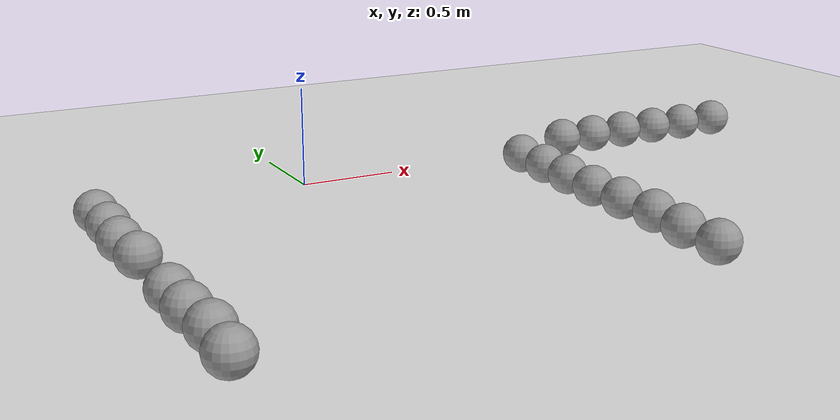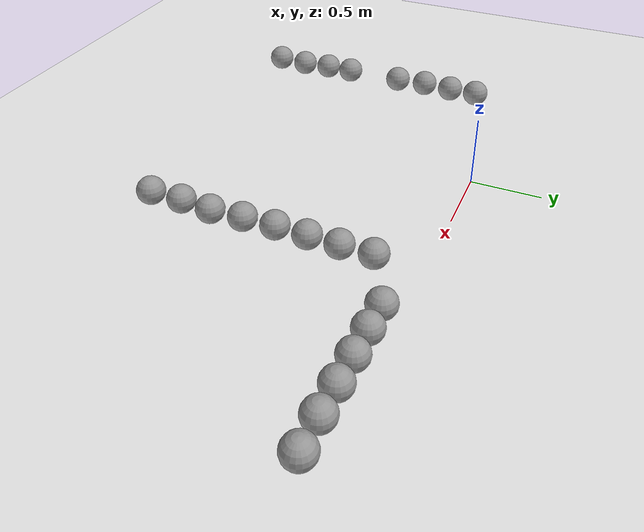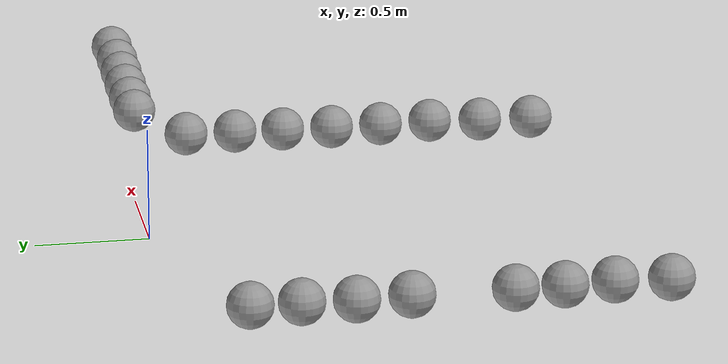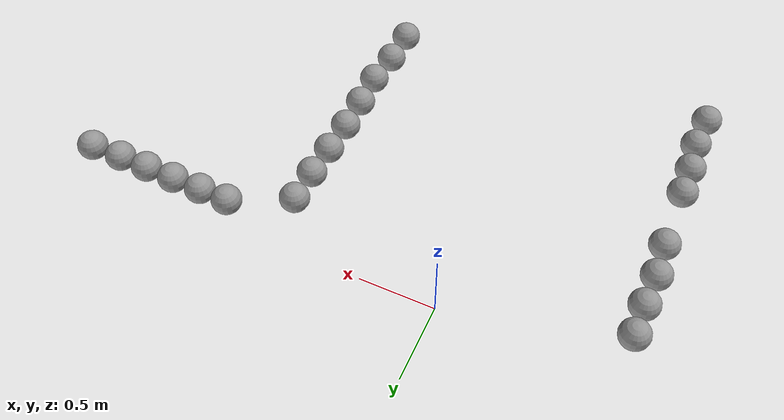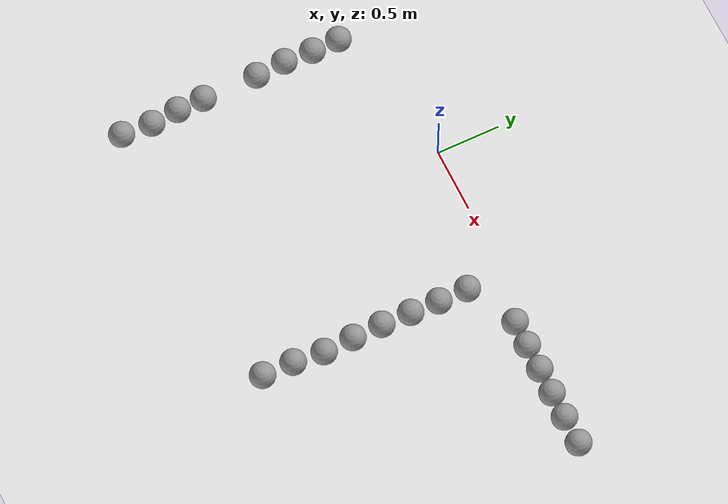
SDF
<sdf version="1.7">
 <world name="default">
  <model name="ground_plane">
   <static>1</static>
   <link name="link">
    <collision name="collision">
     <geometry><plane><normal>0 0 1</normal><size>100 100</size></plane></geometry>
     <surface>
      <contact><collide_bitmask>65535</collide_bitmask></contact>
      <friction><ode><mu>100</mu><mu2>50</mu2></ode></friction>
     </surface>
    </collision>
    <visual name="visual">
     <cast_shadows>0</cast_shadows>
     <geometry><plane><normal>0 0 1</normal><size>100 100</size></plane></geometry>
     <material>
      <script><uri>file://media/materials/scripts/gazebo.material</uri><name>Gazebo/White</name></script>
     </material>
    </visual>
   </link>
  </model>
  <model name="sphere_83">
   <link name="link_0">
    <inertial>
     <mass>1</mass>
     <inertia><ixx>0.1</ixx><ixy>0</ixy><ixz>0</ixz><iyy>0.1</iyy><iyz>0</iyz><izz>0.1</izz></inertia>
    </inertial>
    <visual name="visual">
     <geometry><sphere><radius>0.1</radius></sphere></geometry>
     <material>
      <lighting>1</lighting>
      <script><uri>file://media/materials/scripts/gazebo.material</uri><name>Gazebo/Grey</name></script>
      <shader type="pixel"><normal_map>__default__</normal_map></shader>
      <ambient>0.3 0.3 0.3 1</ambient>
      <diffuse>0.7 0.7 0.7 1</diffuse>
      <specular>0.01 0.01 0.01 1</specular>
      <emissive>0 0 0 1</emissive>
     </material>
    </visual>
    <collision name="collision">
     <geometry><sphere><radius>0.1</radius></sphere></geometry>
     <surface>
      <friction>
       <ode><mu>1</mu><mu2>1</mu2><fdir1>0 0 0</fdir1><slip1>0</slip1><slip2>0</slip2></ode>
       <torsional>
        <coefficient>1</coefficient>
        <patch_radius>0</patch_radius>
        <surface_radius>0</surface_radius>
        <use_patch_radius>1</use_patch_radius>
        <ode><slip>0</slip></ode>
       </torsional>
      </friction>
      <bounce><restitution_coefficient>0</restitution_coefficient><threshold>1e+06</threshold></bounce>
      <contact>
       <collide_without_contact>0</collide_without_contact>
       <collide_without_contact_bitmask>1</collide_without_contact_bitmask>
       <collide_bitmask>1</collide_bitmask>
       <ode>
        <soft_cfm>0</soft_cfm>
        <soft_erp>0.2</soft_erp>
        <kp>1e+13</kp>
        <kd>1</kd>
        <max_vel>0.01</max_vel>
        <min_depth>0</min_depth>
       </ode>
       <bullet>
        <split_impulse>1</split_impulse>
        <split_impulse_penetration_threshold>-0.01</split_impulse_penetration_threshold>
        <soft_cfm>0</soft_cfm>
        <soft_erp>0.2</soft_erp>
        <kp>1e+13</kp>
        <kd>1</kd>
       </bullet>
      </contact>
     </surface>
    </collision>
   </link>
   <static>0</static>
   <pose>-1.1238 -0.277444 0.1 0 -0 0</pose>
  </model>
  <model name="sphere_84">
   <link name="link_0">
    <inertial>
     <mass>1</mass>
     <inertia><ixx>0.1</ixx><ixy>0</ixy><ixz>0</ixz><iyy>0.1</iyy><iyz>0</iyz><izz>0.1</izz></inertia>
    </inertial>
    <visual name="visual">
     <geometry><sphere><radius>0.1</radius></sphere></geometry>
     <material>
      <lighting>1</lighting>
      <script><uri>file://media/materials/scripts/gazebo.material</uri><name>Gazebo/Grey</name></script>
      <shader type="pixel"><normal_map>__default__</normal_map></shader>
      <ambient>0.3 0.3 0.3 1</ambient>
      <diffuse>0.7 0.7 0.7 1</diffuse>
      <specular>0.01 0.01 0.01 1</specular>
      <emissive>0 0 0 1</emissive>
     </material>
    </visual>
    <collision name="collision">
     <geometry><sphere><radius>0.1</radius></sphere></geometry>
     <surface>
      <friction>
       <ode><mu>1</mu><mu2>1</mu2><fdir1>0 0 0</fdir1><slip1>0</slip1><slip2>0</slip2></ode>
       <torsional>
        <coefficient>1</coefficient>
        <patch_radius>0</patch_radius>
        <surface_radius>0</surface_radius>
        <use_patch_radius>1</use_patch_radius>
        <ode><slip>0</slip></ode>
       </torsional>
      </friction>
      <bounce><restitution_coefficient>0</restitution_coefficient><threshold>1e+06</threshold></bounce>
      <contact>
       <collide_without_contact>0</collide_without_contact>
       <collide_without_contact_bitmask>1</collide_without_contact_bitmask>
       <collide_bitmask>1</collide_bitmask>
       <ode>
        <soft_cfm>0</soft_cfm>
        <soft_erp>0.2</soft_erp>
        <kp>1e+13</kp>
        <kd>1</kd>
        <max_vel>0.01</max_vel>
        <min_depth>0</min_depth>
       </ode>
       <bullet>
        <split_impulse>1</split_impulse>
        <split_impulse_penetration_threshold>-0.01</split_impulse_penetration_threshold>
        <soft_cfm>0</soft_cfm>
        <soft_erp>0.2</soft_erp>
        <kp>1e+13</kp>
        <kd>1</kd>
       </bullet>
      </contact>
     </surface>
    </collision>
   </link>
   <static>0</static>
   <pose>-1.12145 -0.492456 0.1 0 -0 0</pose>
  </model>
  <model name="sphere_85">
   <link name="link_0">
    <inertial>
     <mass>1</mass>
     <inertia><ixx>0.1</ixx><ixy>0</ixy><ixz>0</ixz><iyy>0.1</iyy><iyz>0</iyz><izz>0.1</izz></inertia>
    </inertial>
    <visual name="visual">
     <geometry><sphere><radius>0.1</radius></sphere></geometry>
     <material>
      <lighting>1</lighting>
      <script><uri>file://media/materials/scripts/gazebo.material</uri><name>Gazebo/Grey</name></script>
      <shader type="pixel"><normal_map>__default__</normal_map></shader>
      <ambient>0.3 0.3 0.3 1</ambient>
      <diffuse>0.7 0.7 0.7 1</diffuse>
      <specular>0.01 0.01 0.01 1</specular>
      <emissive>0 0 0 1</emissive>
     </material>
    </visual>
    <collision name="collision">
     <geometry><sphere><radius>0.1</radius></sphere></geometry>
     <surface>
      <friction>
       <ode><mu>1</mu><mu2>1</mu2><fdir1>0 0 0</fdir1><slip1>0</slip1><slip2>0</slip2></ode>
       <torsional>
        <coefficient>1</coefficient>
        <patch_radius>0</patch_radius>
        <surface_radius>0</surface_radius>
        <use_patch_radius>1</use_patch_radius>
        <ode><slip>0</slip></ode>
       </torsional>
      </friction>
      <bounce><restitution_coefficient>0</restitution_coefficient><threshold>1e+06</threshold></bounce>
      <contact>
       <collide_without_contact>0</collide_without_contact>
       <collide_without_contact_bitmask>1</collide_without_contact_bitmask>
       <collide_bitmask>1</collide_bitmask>
       <ode>
        <soft_cfm>0</soft_cfm>
        <soft_erp>0.2</soft_erp>
        <kp>1e+13</kp>
        <kd>1</kd>
        <max_vel>0.01</max_vel>
        <min_depth>0</min_depth>
       </ode>
       <bullet>
        <split_impulse>1</split_impulse>
        <split_impulse_penetration_threshold>-0.01</split_impulse_penetration_threshold>
        <soft_cfm>0</soft_cfm>
        <soft_erp>0.2</soft_erp>
        <kp>1e+13</kp>
        <kd>1</kd>
       </bullet>
      </contact>
     </surface>
    </collision>
   </link>
   <static>0</static>
   <pose>-1.13115 -0.719514 0.1 0 -0 0</pose>
  </model>
  <model name="sphere_86">
   <link name="link_0">
    <inertial>
     <mass>1</mass>
     <inertia><ixx>0.1</ixx><ixy>0</ixy><ixz>0</ixz><iyy>0.1</iyy><iyz>0</iyz><izz>0.1</izz></inertia>
    </inertial>
    <visual name="visual">
     <geometry><sphere><radius>0.1</radius></sphere></geometry>
     <material>
      <lighting>1</lighting>
      <script><uri>file://media/materials/scripts/gazebo.material</uri><name>Gazebo/Grey</name></script>
      <shader type="pixel"><normal_map>__default__</normal_map></shader>
      <ambient>0.3 0.3 0.3 1</ambient>
      <diffuse>0.7 0.7 0.7 1</diffuse>
      <specular>0.01 0.01 0.01 1</specular>
      <emissive>0 0 0 1</emissive>
     </material>
    </visual>
    <collision name="collision">
     <geometry><sphere><radius>0.1</radius></sphere></geometry>
     <surface>
      <friction>
       <ode><mu>1</mu><mu2>1</mu2><fdir1>0 0 0</fdir1><slip1>0</slip1><slip2>0</slip2></ode>
       <torsional>
        <coefficient>1</coefficient>
        <patch_radius>0</patch_radius>
        <surface_radius>0</surface_radius>
        <use_patch_radius>1</use_patch_radius>
        <ode><slip>0</slip></ode>
       </torsional>
      </friction>
      <bounce><restitution_coefficient>0</restitution_coefficient><threshold>1e+06</threshold></bounce>
      <contact>
       <collide_without_contact>0</collide_without_contact>
       <collide_without_contact_bitmask>1</collide_without_contact_bitmask>
       <collide_bitmask>1</collide_bitmask>
       <ode>
        <soft_cfm>0</soft_cfm>
        <soft_erp>0.2</soft_erp>
        <kp>1e+13</kp>
        <kd>1</kd>
        <max_vel>0.01</max_vel>
        <min_depth>0</min_depth>
       </ode>
       <bullet>
        <split_impulse>1</split_impulse>
        <split_impulse_penetration_threshold>-0.01</split_impulse_penetration_threshold>
        <soft_cfm>0</soft_cfm>
        <soft_erp>0.2</soft_erp>
        <kp>1e+13</kp>
        <kd>1</kd>
       </bullet>
      </contact>
     </surface>
    </collision>
   </link>
   <static>0</static>
   <pose>-1.11641 -0.954192 0.1 0 -0 0</pose>
  </model>
  <model name="sphere_88">
   <link name="link_0">
    <inertial>
     <mass>1</mass>
     <inertia><ixx>0.1</ixx><ixy>0</ixy><ixz>0</ixz><iyy>0.1</iyy><iyz>0</iyz><izz>0.1</izz></inertia>
    </inertial>
    <visual name="visual">
     <geometry><sphere><radius>0.1</radius></sphere></geometry>
     <material>
      <lighting>1</lighting>
      <script><uri>file://media/materials/scripts/gazebo.material</uri><name>Gazebo/Grey</name></script>
      <shader type="pixel"><normal_map>__default__</normal_map></shader>
      <ambient>0.3 0.3 0.3 1</ambient>
      <diffuse>0.7 0.7 0.7 1</diffuse>
      <specular>0.01 0.01 0.01 1</specular>
      <emissive>0 0 0 1</emissive>
     </material>
    </visual>
    <collision name="collision">
     <geometry><sphere><radius>0.1</radius></sphere></geometry>
     <surface>
      <friction>
       <ode><mu>1</mu><mu2>1</mu2><fdir1>0 0 0</fdir1><slip1>0</slip1><slip2>0</slip2></ode>
       <torsional>
        <coefficient>1</coefficient>
        <patch_radius>0</patch_radius>
        <surface_radius>0</surface_radius>
        <use_patch_radius>1</use_patch_radius>
        <ode><slip>0</slip></ode>
       </torsional>
      </friction>
      <bounce><restitution_coefficient>0</restitution_coefficient><threshold>1e+06</threshold></bounce>
      <contact>
       <collide_without_contact>0</collide_without_contact>
       <collide_without_contact_bitmask>1</collide_without_contact_bitmask>
       <collide_bitmask>1</collide_bitmask>
       <ode>
        <soft_cfm>0</soft_cfm>
        <soft_erp>0.2</soft_erp>
        <kp>1e+13</kp>
        <kd>1</kd>
        <max_vel>0.01</max_vel>
        <min_depth>0</min_depth>
       </ode>
       <bullet>
        <split_impulse>1</split_impulse>
        <split_impulse_penetration_threshold>-0.01</split_impulse_penetration_threshold>
        <soft_cfm>0</soft_cfm>
        <soft_erp>0.2</soft_erp>
        <kp>1e+13</kp>
        <kd>1</kd>
       </bullet>
      </contact>
     </surface>
    </collision>
   </link>
   <static>0</static>
   <pose>-1.11478 -1.39132 0.1 0 -0 0</pose>
  </model>
  <model name="sphere_89">
   <link name="link_0">
    <inertial>
     <mass>1</mass>
     <inertia><ixx>0.1</ixx><ixy>0</ixy><ixz>0</ixz><iyy>0.1</iyy><iyz>0</iyz><izz>0.1</izz></inertia>
    </inertial>
    <visual name="visual">
     <geometry><sphere><radius>0.1</radius></sphere></geometry>
     <material>
      <lighting>1</lighting>
      <script><uri>file://media/materials/scripts/gazebo.material</uri><name>Gazebo/Grey</name></script>
      <shader type="pixel"><normal_map>__default__</normal_map></shader>
      <ambient>0.3 0.3 0.3 1</ambient>
      <diffuse>0.7 0.7 0.7 1</diffuse>
      <specular>0.01 0.01 0.01 1</specular>
      <emissive>0 0 0 1</emissive>
     </material>
    </visual>
    <collision name="collision">
     <geometry><sphere><radius>0.1</radius></sphere></geometry>
     <surface>
      <friction>
       <ode><mu>1</mu><mu2>1</mu2><fdir1>0 0 0</fdir1><slip1>0</slip1><slip2>0</slip2></ode>
       <torsional>
        <coefficient>1</coefficient>
        <patch_radius>0</patch_radius>
        <surface_radius>0</surface_radius>
        <use_patch_radius>1</use_patch_radius>
        <ode><slip>0</slip></ode>
       </torsional>
      </friction>
      <bounce><restitution_coefficient>0</restitution_coefficient><threshold>1e+06</threshold></bounce>
      <contact>
       <collide_without_contact>0</collide_without_contact>
       <collide_without_contact_bitmask>1</collide_without_contact_bitmask>
       <collide_bitmask>1</collide_bitmask>
       <ode>
        <soft_cfm>0</soft_cfm>
        <soft_erp>0.2</soft_erp>
        <kp>1e+13</kp>
        <kd>1</kd>
        <max_vel>0.01</max_vel>
        <min_depth>0</min_depth>
       </ode>
       <bullet>
        <split_impulse>1</split_impulse>
        <split_impulse_penetration_threshold>-0.01</split_impulse_penetration_threshold>
        <soft_cfm>0</soft_cfm>
        <soft_erp>0.2</soft_erp>
        <kp>1e+13</kp>
        <kd>1</kd>
       </bullet>
      </contact>
     </surface>
    </collision>
   </link>
   <static>0</static>
   <pose>-1.1126 -1.60242 0.1 0 -0 0</pose>
  </model>
  <model name="sphere_90">
   <link name="link_0">
    <inertial>
     <mass>1</mass>
     <inertia><ixx>0.1</ixx><ixy>0</ixy><ixz>0</ixz><iyy>0.1</iyy><iyz>0</iyz><izz>0.1</izz></inertia>
    </inertial>
    <visual name="visual">
     <geometry><sphere><radius>0.1</radius></sphere></geometry>
     <material>
      <lighting>1</lighting>
      <script><uri>file://media/materials/scripts/gazebo.material</uri><name>Gazebo/Grey</name></script>
      <shader type="pixel"><normal_map>__default__</normal_map></shader>
      <ambient>0.3 0.3 0.3 1</ambient>
      <diffuse>0.7 0.7 0.7 1</diffuse>
      <specular>0.01 0.01 0.01 1</specular>
      <emissive>0 0 0 1</emissive>
     </material>
    </visual>
    <collision name="collision">
     <geometry><sphere><radius>0.1</radius></sphere></geometry>
     <surface>
      <friction>
       <ode><mu>1</mu><mu2>1</mu2><fdir1>0 0 0</fdir1><slip1>0</slip1><slip2>0</slip2></ode>
       <torsional>
        <coefficient>1</coefficient>
        <patch_radius>0</patch_radius>
        <surface_radius>0</surface_radius>
        <use_patch_radius>1</use_patch_radius>
        <ode><slip>0</slip></ode>
       </torsional>
      </friction>
      <bounce><restitution_coefficient>0</restitution_coefficient><threshold>1e+06</threshold></bounce>
      <contact>
       <collide_without_contact>0</collide_without_contact>
       <collide_without_contact_bitmask>1</collide_without_contact_bitmask>
       <collide_bitmask>1</collide_bitmask>
       <ode>
        <soft_cfm>0</soft_cfm>
        <soft_erp>0.2</soft_erp>
        <kp>1e+13</kp>
        <kd>1</kd>
        <max_vel>0.01</max_vel>
        <min_depth>0</min_depth>
       </ode>
       <bullet>
        <split_impulse>1</split_impulse>
        <split_impulse_penetration_threshold>-0.01</split_impulse_penetration_threshold>
        <soft_cfm>0</soft_cfm>
        <soft_erp>0.2</soft_erp>
        <kp>1e+13</kp>
        <kd>1</kd>
       </bullet>
      </contact>
     </surface>
    </collision>
   </link>
   <static>0</static>
   <pose>-1.09355 -1.82017 0.1 0 -0 0</pose>
  </model>
  <model name="sphere_91">
   <link name="link_0">
    <inertial>
     <mass>1</mass>
     <inertia><ixx>0.1</ixx><ixy>0</ixy><ixz>0</ixz><iyy>0.1</iyy><iyz>0</iyz><izz>0.1</izz></inertia>
    </inertial>
    <visual name="visual">
     <geometry><sphere><radius>0.1</radius></sphere></geometry>
     <material>
      <lighting>1</lighting>
      <script><uri>file://media/materials/scripts/gazebo.material</uri><name>Gazebo/Grey</name></script>
      <shader type="pixel"><normal_map>__default__</normal_map></shader>
      <ambient>0.3 0.3 0.3 1</ambient>
      <diffuse>0.7 0.7 0.7 1</diffuse>
      <specular>0.01 0.01 0.01 1</specular>
      <emissive>0 0 0 1</emissive>
     </material>
    </visual>
    <collision name="collision">
     <geometry><sphere><radius>0.1</radius></sphere></geometry>
     <surface>
      <friction>
       <ode><mu>1</mu><mu2>1</mu2><fdir1>0 0 0</fdir1><slip1>0</slip1><slip2>0</slip2></ode>
       <torsional>
        <coefficient>1</coefficient>
        <patch_radius>0</patch_radius>
        <surface_radius>0</surface_radius>
        <use_patch_radius>1</use_patch_radius>
        <ode><slip>0</slip></ode>
       </torsional>
      </friction>
      <bounce><restitution_coefficient>0</restitution_coefficient><threshold>1e+06</threshold></bounce>
      <contact>
       <collide_without_contact>0</collide_without_contact>
       <collide_without_contact_bitmask>1</collide_without_contact_bitmask>
       <collide_bitmask>1</collide_bitmask>
       <ode>
        <soft_cfm>0</soft_cfm>
        <soft_erp>0.2</soft_erp>
        <kp>1e+13</kp>
        <kd>1</kd>
        <max_vel>0.01</max_vel>
        <min_depth>0</min_depth>
       </ode>
       <bullet>
        <split_impulse>1</split_impulse>
        <split_impulse_penetration_threshold>-0.01</split_impulse_penetration_threshold>
        <soft_cfm>0</soft_cfm>
        <soft_erp>0.2</soft_erp>
        <kp>1e+13</kp>
        <kd>1</kd>
       </bullet>
      </contact>
     </surface>
    </collision>
   </link>
   <static>0</static>
   <pose>-1.10786 -2.05936 0.1 0 -0 0</pose>
  </model>
  <model name="sphere_94">
   <link name="link_0">
    <inertial>
     <mass>1</mass>
     <inertia><ixx>0.1</ixx><ixy>0</ixy><ixz>0</ixz><iyy>0.1</iyy><iyz>0</iyz><izz>0.1</izz></inertia>
    </inertial>
    <visual name="visual">
     <geometry><sphere><radius>0.1</radius></sphere></geometry>
     <material>
      <lighting>1</lighting>
      <script><uri>file://media/materials/scripts/gazebo.material</uri><name>Gazebo/Grey</name></script>
      <shader type="pixel"><normal_map>__default__</normal_map></shader>
      <ambient>0.3 0.3 0.3 1</ambient>
      <diffuse>0.7 0.7 0.7 1</diffuse>
      <specular>0.01 0.01 0.01 1</specular>
      <emissive>0 0 0 1</emissive>
     </material>
    </visual>
    <collision name="collision">
     <geometry><sphere><radius>0.1</radius></sphere></geometry>
     <surface>
      <friction>
       <ode><mu>1</mu><mu2>1</mu2><fdir1>0 0 0</fdir1><slip1>0</slip1><slip2>0</slip2></ode>
       <torsional>
        <coefficient>1</coefficient>
        <patch_radius>0</patch_radius>
        <surface_radius>0</surface_radius>
        <use_patch_radius>1</use_patch_radius>
        <ode><slip>0</slip></ode>
       </torsional>
      </friction>
      <bounce><restitution_coefficient>0</restitution_coefficient><threshold>1e+06</threshold></bounce>
      <contact>
       <collide_without_contact>0</collide_without_contact>
       <collide_without_contact_bitmask>1</collide_without_contact_bitmask>
       <collide_bitmask>1</collide_bitmask>
       <ode>
        <soft_cfm>0</soft_cfm>
        <soft_erp>0.2</soft_erp>
        <kp>1e+13</kp>
        <kd>1</kd>
        <max_vel>0.01</max_vel>
        <min_depth>0</min_depth>
       </ode>
       <bullet>
        <split_impulse>1</split_impulse>
        <split_impulse_penetration_threshold>-0.01</split_impulse_penetration_threshold>
        <soft_cfm>0</soft_cfm>
        <soft_erp>0.2</soft_erp>
        <kp>1e+13</kp>
        <kd>1</kd>
       </bullet>
      </contact>
     </surface>
    </collision>
   </link>
   <static>0</static>
   <pose>1.11363 -0.312865 0.1 0 -0 0</pose>
  </model>
  <model name="sphere_95">
   <link name="link_0">
    <inertial>
     <mass>1</mass>
     <inertia><ixx>0.1</ixx><ixy>0</ixy><ixz>0</ixz><iyy>0.1</iyy><iyz>0</iyz><izz>0.1</izz></inertia>
    </inertial>
    <visual name="visual">
     <geometry><sphere><radius>0.1</radius></sphere></geometry>
     <material>
      <lighting>1</lighting>
      <script><uri>file://media/materials/scripts/gazebo.material</uri><name>Gazebo/Grey</name></script>
      <shader type="pixel"><normal_map>__default__</normal_map></shader>
      <ambient>0.3 0.3 0.3 1</ambient>
      <diffuse>0.7 0.7 0.7 1</diffuse>
      <specular>0.01 0.01 0.01 1</specular>
      <emissive>0 0 0 1</emissive>
     </material>
    </visual>
    <collision name="collision">
     <geometry><sphere><radius>0.1</radius></sphere></geometry>
     <surface>
      <friction>
       <ode><mu>1</mu><mu2>1</mu2><fdir1>0 0 0</fdir1><slip1>0</slip1><slip2>0</slip2></ode>
       <torsional>
        <coefficient>1</coefficient>
        <patch_radius>0</patch_radius>
        <surface_radius>0</surface_radius>
        <use_patch_radius>1</use_patch_radius>
        <ode><slip>0</slip></ode>
       </torsional>
      </friction>
      <bounce><restitution_coefficient>0</restitution_coefficient><threshold>1e+06</threshold></bounce>
      <contact>
       <collide_without_contact>0</collide_without_contact>
       <collide_without_contact_bitmask>1</collide_without_contact_bitmask>
       <collide_bitmask>1</collide_bitmask>
       <ode>
        <soft_cfm>0</soft_cfm>
        <soft_erp>0.2</soft_erp>
        <kp>1e+13</kp>
        <kd>1</kd>
        <max_vel>0.01</max_vel>
        <min_depth>0</min_depth>
       </ode>
       <bullet>
        <split_impulse>1</split_impulse>
        <split_impulse_penetration_threshold>-0.01</split_impulse_penetration_threshold>
        <soft_cfm>0</soft_cfm>
        <soft_erp>0.2</soft_erp>
        <kp>1e+13</kp>
        <kd>1</kd>
       </bullet>
      </contact>
     </surface>
    </collision>
   </link>
   <static>0</static>
   <pose>1.11156 -0.542301 0.1 0 -0 0</pose>
  </model>
  <model name="sphere_96">
   <link name="link_0">
    <inertial>
     <mass>1</mass>
     <inertia><ixx>0.1</ixx><ixy>0</ixy><ixz>0</ixz><iyy>0.1</iyy><iyz>0</iyz><izz>0.1</izz></inertia>
    </inertial>
    <visual name="visual">
     <geometry><sphere><radius>0.1</radius></sphere></geometry>
     <material>
      <lighting>1</lighting>
      <script><uri>file://media/materials/scripts/gazebo.material</uri><name>Gazebo/Grey</name></script>
      <shader type="pixel"><normal_map>__default__</normal_map></shader>
      <ambient>0.3 0.3 0.3 1</ambient>
      <diffuse>0.7 0.7 0.7 1</diffuse>
      <specular>0.01 0.01 0.01 1</specular>
      <emissive>0 0 0 1</emissive>
     </material>
    </visual>
    <collision name="collision">
     <geometry><sphere><radius>0.1</radius></sphere></geometry>
     <surface>
      <friction>
       <ode><mu>1</mu><mu2>1</mu2><fdir1>0 0 0</fdir1><slip1>0</slip1><slip2>0</slip2></ode>
       <torsional>
        <coefficient>1</coefficient>
        <patch_radius>0</patch_radius>
        <surface_radius>0</surface_radius>
        <use_patch_radius>1</use_patch_radius>
        <ode><slip>0</slip></ode>
       </torsional>
      </friction>
      <bounce><restitution_coefficient>0</restitution_coefficient><threshold>1e+06</threshold></bounce>
      <contact>
       <collide_without_contact>0</collide_without_contact>
       <collide_without_contact_bitmask>1</collide_without_contact_bitmask>
       <collide_bitmask>1</collide_bitmask>
       <ode>
        <soft_cfm>0</soft_cfm>
        <soft_erp>0.2</soft_erp>
        <kp>1e+13</kp>
        <kd>1</kd>
        <max_vel>0.01</max_vel>
        <min_depth>0</min_depth>
       </ode>
       <bullet>
        <split_impulse>1</split_impulse>
        <split_impulse_penetration_threshold>-0.01</split_impulse_penetration_threshold>
        <soft_cfm>0</soft_cfm>
        <soft_erp>0.2</soft_erp>
        <kp>1e+13</kp>
        <kd>1</kd>
       </bullet>
      </contact>
     </surface>
    </collision>
   </link>
   <static>0</static>
   <pose>1.10447 -0.766351 0.1 0 -0 0</pose>
  </model>
  <model name="sphere_97">
   <link name="link_0">
    <inertial>
     <mass>1</mass>
     <inertia><ixx>0.1</ixx><ixy>0</ixy><ixz>0</ixz><iyy>0.1</iyy><iyz>0</iyz><izz>0.1</izz></inertia>
    </inertial>
    <visual name="visual">
     <geometry><sphere><radius>0.1</radius></sphere></geometry>
     <material>
      <lighting>1</lighting>
      <script><uri>file://media/materials/scripts/gazebo.material</uri><name>Gazebo/Grey</name></script>
      <shader type="pixel"><normal_map>__default__</normal_map></shader>
      <ambient>0.3 0.3 0.3 1</ambient>
      <diffuse>0.7 0.7 0.7 1</diffuse>
      <specular>0.01 0.01 0.01 1</specular>
      <emissive>0 0 0 1</emissive>
     </material>
    </visual>
    <collision name="collision">
     <geometry><sphere><radius>0.1</radius></sphere></geometry>
     <surface>
      <friction>
       <ode><mu>1</mu><mu2>1</mu2><fdir1>0 0 0</fdir1><slip1>0</slip1><slip2>0</slip2></ode>
       <torsional>
        <coefficient>1</coefficient>
        <patch_radius>0</patch_radius>
        <surface_radius>0</surface_radius>
        <use_patch_radius>1</use_patch_radius>
        <ode><slip>0</slip></ode>
       </torsional>
      </friction>
      <bounce><restitution_coefficient>0</restitution_coefficient><threshold>1e+06</threshold></bounce>
      <contact>
       <collide_without_contact>0</collide_without_contact>
       <collide_without_contact_bitmask>1</collide_without_contact_bitmask>
       <collide_bitmask>1</collide_bitmask>
       <ode>
        <soft_cfm>0</soft_cfm>
        <soft_erp>0.2</soft_erp>
        <kp>1e+13</kp>
        <kd>1</kd>
        <max_vel>0.01</max_vel>
        <min_depth>0</min_depth>
       </ode>
       <bullet>
        <split_impulse>1</split_impulse>
        <split_impulse_penetration_threshold>-0.01</split_impulse_penetration_threshold>
        <soft_cfm>0</soft_cfm>
        <soft_erp>0.2</soft_erp>
        <kp>1e+13</kp>
        <kd>1</kd>
       </bullet>
      </contact>
     </surface>
    </collision>
   </link>
   <static>0</static>
   <pose>1.09747 -0.99648 0.1 0 -0 0</pose>
  </model>
  <model name="sphere_98">
   <link name="link_0">
    <inertial>
     <mass>1</mass>
     <inertia><ixx>0.1</ixx><ixy>0</ixy><ixz>0</ixz><iyy>0.1</iyy><iyz>0</iyz><izz>0.1</izz></inertia>
    </inertial>
    <visual name="visual">
     <geometry><sphere><radius>0.1</radius></sphere></geometry>
     <material>
      <lighting>1</lighting>
      <script><uri>file://media/materials/scripts/gazebo.material</uri><name>Gazebo/Grey</name></script>
      <shader type="pixel"><normal_map>__default__</normal_map></shader>
      <ambient>0.3 0.3 0.3 1</ambient>
      <diffuse>0.7 0.7 0.7 1</diffuse>
      <specular>0.01 0.01 0.01 1</specular>
      <emissive>0 0 0 1</emissive>
     </material>
    </visual>
    <collision name="collision">
     <geometry><sphere><radius>0.1</radius></sphere></geometry>
     <surface>
      <friction>
       <ode><mu>1</mu><mu2>1</mu2><fdir1>0 0 0</fdir1><slip1>0</slip1><slip2>0</slip2></ode>
       <torsional>
        <coefficient>1</coefficient>
        <patch_radius>0</patch_radius>
        <surface_radius>0</surface_radius>
        <use_patch_radius>1</use_patch_radius>
        <ode><slip>0</slip></ode>
       </torsional>
      </friction>
      <bounce><restitution_coefficient>0</restitution_coefficient><threshold>1e+06</threshold></bounce>
      <contact>
       <collide_without_contact>0</collide_without_contact>
       <collide_without_contact_bitmask>1</collide_without_contact_bitmask>
       <collide_bitmask>1</collide_bitmask>
       <ode>
        <soft_cfm>0</soft_cfm>
        <soft_erp>0.2</soft_erp>
        <kp>1e+13</kp>
        <kd>1</kd>
        <max_vel>0.01</max_vel>
        <min_depth>0</min_depth>
       </ode>
       <bullet>
        <split_impulse>1</split_impulse>
        <split_impulse_penetration_threshold>-0.01</split_impulse_penetration_threshold>
        <soft_cfm>0</soft_cfm>
        <soft_erp>0.2</soft_erp>
        <kp>1e+13</kp>
        <kd>1</kd>
       </bullet>
      </contact>
     </surface>
    </collision>
   </link>
   <static>0</static>
   <pose>1.10132 -1.22955 0.1 0 -0 0</pose>
  </model>
  <model name="sphere_99">
   <link name="link_0">
    <inertial>
     <mass>1</mass>
     <inertia><ixx>0.1</ixx><ixy>0</ixy><ixz>0</ixz><iyy>0.1</iyy><iyz>0</iyz><izz>0.1</izz></inertia>
    </inertial>
    <visual name="visual">
     <geometry><sphere><radius>0.1</radius></sphere></geometry>
     <material>
      <lighting>1</lighting>
      <script><uri>file://media/materials/scripts/gazebo.material</uri><name>Gazebo/Grey</name></script>
      <shader type="pixel"><normal_map>__default__</normal_map></shader>
      <ambient>0.3 0.3 0.3 1</ambient>
      <diffuse>0.7 0.7 0.7 1</diffuse>
      <specular>0.01 0.01 0.01 1</specular>
      <emissive>0 0 0 1</emissive>
     </material>
    </visual>
    <collision name="collision">
     <geometry><sphere><radius>0.1</radius></sphere></geometry>
     <surface>
      <friction>
       <ode><mu>1</mu><mu2>1</mu2><fdir1>0 0 0</fdir1><slip1>0</slip1><slip2>0</slip2></ode>
       <torsional>
        <coefficient>1</coefficient>
        <patch_radius>0</patch_radius>
        <surface_radius>0</surface_radius>
        <use_patch_radius>1</use_patch_radius>
        <ode><slip>0</slip></ode>
       </torsional>
      </friction>
      <bounce><restitution_coefficient>0</restitution_coefficient><threshold>1e+06</threshold></bounce>
      <contact>
       <collide_without_contact>0</collide_without_contact>
       <collide_without_contact_bitmask>1</collide_without_contact_bitmask>
       <collide_bitmask>1</collide_bitmask>
       <ode>
        <soft_cfm>0</soft_cfm>
        <soft_erp>0.2</soft_erp>
        <kp>1e+13</kp>
        <kd>1</kd>
        <max_vel>0.01</max_vel>
        <min_depth>0</min_depth>
       </ode>
       <bullet>
        <split_impulse>1</split_impulse>
        <split_impulse_penetration_threshold>-0.01</split_impulse_penetration_threshold>
        <soft_cfm>0</soft_cfm>
        <soft_erp>0.2</soft_erp>
        <kp>1e+13</kp>
        <kd>1</kd>
       </bullet>
      </contact>
     </surface>
    </collision>
   </link>
   <static>0</static>
   <pose>1.1105 -1.46578 0.1 0 -0 0</pose>
  </model>
  <model name="sphere_100">
   <link name="link_0">
    <inertial>
     <mass>1</mass>
     <inertia><ixx>0.1</ixx><ixy>0</ixy><ixz>0</ixz><iyy>0.1</iyy><iyz>0</iyz><izz>0.1</izz></inertia>
    </inertial>
    <visual name="visual">
     <geometry><sphere><radius>0.1</radius></sphere></geometry>
     <material>
      <lighting>1</lighting>
      <script><uri>file://media/materials/scripts/gazebo.material</uri><name>Gazebo/Grey</name></script>
      <shader type="pixel"><normal_map>__default__</normal_map></shader>
      <ambient>0.3 0.3 0.3 1</ambient>
      <diffuse>0.7 0.7 0.7 1</diffuse>
      <specular>0.01 0.01 0.01 1</specular>
      <emissive>0 0 0 1</emissive>
     </material>
    </visual>
    <collision name="collision">
     <geometry><sphere><radius>0.1</radius></sphere></geometry>
     <surface>
      <friction>
       <ode><mu>1</mu><mu2>1</mu2><fdir1>0 0 0</fdir1><slip1>0</slip1><slip2>0</slip2></ode>
       <torsional>
        <coefficient>1</coefficient>
        <patch_radius>0</patch_radius>
        <surface_radius>0</surface_radius>
        <use_patch_radius>1</use_patch_radius>
        <ode><slip>0</slip></ode>
       </torsional>
      </friction>
      <bounce><restitution_coefficient>0</restitution_coefficient><threshold>1e+06</threshold></bounce>
      <contact>
       <collide_without_contact>0</collide_without_contact>
       <collide_without_contact_bitmask>1</collide_without_contact_bitmask>
       <collide_bitmask>1</collide_bitmask>
       <ode>
        <soft_cfm>0</soft_cfm>
        <soft_erp>0.2</soft_erp>
        <kp>1e+13</kp>
        <kd>1</kd>
        <max_vel>0.01</max_vel>
        <min_depth>0</min_depth>
       </ode>
       <bullet>
        <split_impulse>1</split_impulse>
        <split_impulse_penetration_threshold>-0.01</split_impulse_penetration_threshold>
        <soft_cfm>0</soft_cfm>
        <soft_erp>0.2</soft_erp>
        <kp>1e+13</kp>
        <kd>1</kd>
       </bullet>
      </contact>
     </surface>
    </collision>
   </link>
   <static>0</static>
   <pose>1.0877 -1.70197 0.1 0 -0 0</pose>
  </model>
  <model name="sphere_101">
   <link name="link_0">
    <inertial>
     <mass>1</mass>
     <inertia><ixx>0.1</ixx><ixy>0</ixy><ixz>0</ixz><iyy>0.1</iyy><iyz>0</iyz><izz>0.1</izz></inertia>
    </inertial>
    <visual name="visual">
     <geometry><sphere><radius>0.1</radius></sphere></geometry>
     <material>
      <lighting>1</lighting>
      <script><uri>file://media/materials/scripts/gazebo.material</uri><name>Gazebo/Grey</name></script>
      <shader type="pixel"><normal_map>__default__</normal_map></shader>
      <ambient>0.3 0.3 0.3 1</ambient>
      <diffuse>0.7 0.7 0.7 1</diffuse>
      <specular>0.01 0.01 0.01 1</specular>
      <emissive>0 0 0 1</emissive>
     </material>
    </visual>
    <collision name="collision">
     <geometry><sphere><radius>0.1</radius></sphere></geometry>
     <surface>
      <friction>
       <ode><mu>1</mu><mu2>1</mu2><fdir1>0 0 0</fdir1><slip1>0</slip1><slip2>0</slip2></ode>
       <torsional>
        <coefficient>1</coefficient>
        <patch_radius>0</patch_radius>
        <surface_radius>0</surface_radius>
        <use_patch_radius>1</use_patch_radius>
        <ode><slip>0</slip></ode>
       </torsional>
      </friction>
      <bounce><restitution_coefficient>0</restitution_coefficient><threshold>1e+06</threshold></bounce>
      <contact>
       <collide_without_contact>0</collide_without_contact>
       <collide_without_contact_bitmask>1</collide_without_contact_bitmask>
       <collide_bitmask>1</collide_bitmask>
       <ode>
        <soft_cfm>0</soft_cfm>
        <soft_erp>0.2</soft_erp>
        <kp>1e+13</kp>
        <kd>1</kd>
        <max_vel>0.01</max_vel>
        <min_depth>0</min_depth>
       </ode>
       <bullet>
        <split_impulse>1</split_impulse>
        <split_impulse_penetration_threshold>-0.01</split_impulse_penetration_threshold>
        <soft_cfm>0</soft_cfm>
        <soft_erp>0.2</soft_erp>
        <kp>1e+13</kp>
        <kd>1</kd>
       </bullet>
      </contact>
     </surface>
    </collision>
   </link>
   <static>0</static>
   <pose>1.0846 -1.94494 0.1 0 -0 0</pose>
  </model>
  <model name="sphere_110">
   <link name="link_0">
    <inertial>
     <mass>1</mass>
     <inertia><ixx>0.1</ixx><ixy>0</ixy><ixz>0</ixz><iyy>0.1</iyy><iyz>0</iyz><izz>0.1</izz></inertia>
    </inertial>
    <visual name="visual">
     <geometry><sphere><radius>0.1</radius></sphere></geometry>
     <material>
      <lighting>1</lighting>
      <script><uri>file://media/materials/scripts/gazebo.material</uri><name>Gazebo/Grey</name></script>
      <shader type="pixel"><normal_map>__default__</normal_map></shader>
      <ambient>0.3 0.3 0.3 1</ambient>
      <diffuse>0.7 0.7 0.7 1</diffuse>
      <specular>0.01 0.01 0.01 1</specular>
      <emissive>0 0 0 1</emissive>
     </material>
    </visual>
    <collision name="collision">
     <geometry><sphere><radius>0.1</radius></sphere></geometry>
     <surface>
      <friction>
       <ode><mu>1</mu><mu2>1</mu2><fdir1>0 0 0</fdir1><slip1>0</slip1><slip2>0</slip2></ode>
       <torsional>
        <coefficient>1</coefficient>
        <patch_radius>0</patch_radius>
        <surface_radius>0</surface_radius>
        <use_patch_radius>1</use_patch_radius>
        <ode><slip>0</slip></ode>
       </torsional>
      </friction>
      <bounce><restitution_coefficient>0</restitution_coefficient><threshold>1e+06</threshold></bounce>
      <contact>
       <collide_without_contact>0</collide_without_contact>
       <collide_without_contact_bitmask>1</collide_without_contact_bitmask>
       <collide_bitmask>1</collide_bitmask>
       <ode>
        <soft_cfm>0</soft_cfm>
        <soft_erp>0.2</soft_erp>
        <kp>1e+13</kp>
        <kd>1</kd>
        <max_vel>0.01</max_vel>
        <min_depth>0</min_depth>
       </ode>
       <bullet>
        <split_impulse>1</split_impulse>
        <split_impulse_penetration_threshold>-0.01</split_impulse_penetration_threshold>
        <soft_cfm>0</soft_cfm>
        <soft_erp>0.2</soft_erp>
        <kp>1e+13</kp>
        <kd>1</kd>
       </bullet>
      </contact>
     </surface>
    </collision>
   </link>
   <static>0</static>
   <pose>1.49834 -0.117268 0.1 5.2e-05 0.008227 1.7e-05</pose>
  </model>
  <model name="sphere_111">
   <link name="link_0">
    <inertial>
     <mass>1</mass>
     <inertia><ixx>0.1</ixx><ixy>0</ixy><ixz>0</ixz><iyy>0.1</iyy><iyz>0</iyz><izz>0.1</izz></inertia>
    </inertial>
    <visual name="visual">
     <geometry><sphere><radius>0.1</radius></sphere></geometry>
     <material>
      <lighting>1</lighting>
      <script><uri>file://media/materials/scripts/gazebo.material</uri><name>Gazebo/Grey</name></script>
      <shader type="pixel"><normal_map>__default__</normal_map></shader>
      <ambient>0.3 0.3 0.3 1</ambient>
      <diffuse>0.7 0.7 0.7 1</diffuse>
      <specular>0.01 0.01 0.01 1</specular>
      <emissive>0 0 0 1</emissive>
     </material>
    </visual>
    <collision name="collision">
     <geometry><sphere><radius>0.1</radius></sphere></geometry>
     <surface>
      <friction>
       <ode><mu>1</mu><mu2>1</mu2><fdir1>0 0 0</fdir1><slip1>0</slip1><slip2>0</slip2></ode>
       <torsional>
        <coefficient>1</coefficient>
        <patch_radius>0</patch_radius>
        <surface_radius>0</surface_radius>
        <use_patch_radius>1</use_patch_radius>
        <ode><slip>0</slip></ode>
       </torsional>
      </friction>
      <bounce><restitution_coefficient>0</restitution_coefficient><threshold>1e+06</threshold></bounce>
      <contact>
       <collide_without_contact>0</collide_without_contact>
       <collide_without_contact_bitmask>1</collide_without_contact_bitmask>
       <collide_bitmask>1</collide_bitmask>
       <ode>
        <soft_cfm>0</soft_cfm>
        <soft_erp>0.2</soft_erp>
        <kp>1e+13</kp>
        <kd>1</kd>
        <max_vel>0.01</max_vel>
        <min_depth>0</min_depth>
       </ode>
       <bullet>
        <split_impulse>1</split_impulse>
        <split_impulse_penetration_threshold>-0.01</split_impulse_penetration_threshold>
        <soft_cfm>0</soft_cfm>
        <soft_erp>0.2</soft_erp>
        <kp>1e+13</kp>
        <kd>1</kd>
       </bullet>
      </contact>
     </surface>
    </collision>
   </link>
   <static>0</static>
   <pose>1.69926 -0.120293 0.1 0.000133 0.008807 5e-06</pose>
  </model>
  <model name="sphere_112">
   <link name="link_0">
    <inertial>
     <mass>1</mass>
     <inertia><ixx>0.1</ixx><ixy>0</ixy><ixz>0</ixz><iyy>0.1</iyy><iyz>0</iyz><izz>0.1</izz></inertia>
    </inertial>
    <visual name="visual">
     <geometry><sphere><radius>0.1</radius></sphere></geometry>
     <material>
      <lighting>1</lighting>
      <script><uri>file://media/materials/scripts/gazebo.material</uri><name>Gazebo/Grey</name></script>
      <shader type="pixel"><normal_map>__default__</normal_map></shader>
      <ambient>0.3 0.3 0.3 1</ambient>
      <diffuse>0.7 0.7 0.7 1</diffuse>
      <specular>0.01 0.01 0.01 1</specular>
      <emissive>0 0 0 1</emissive>
     </material>
    </visual>
    <collision name="collision">
     <geometry><sphere><radius>0.1</radius></sphere></geometry>
     <surface>
      <friction>
       <ode><mu>1</mu><mu2>1</mu2><fdir1>0 0 0</fdir1><slip1>0</slip1><slip2>0</slip2></ode>
       <torsional>
        <coefficient>1</coefficient>
        <patch_radius>0</patch_radius>
        <surface_radius>0</surface_radius>
        <use_patch_radius>1</use_patch_radius>
        <ode><slip>0</slip></ode>
       </torsional>
      </friction>
      <bounce><restitution_coefficient>0</restitution_coefficient><threshold>1e+06</threshold></bounce>
      <contact>
       <collide_without_contact>0</collide_without_contact>
       <collide_without_contact_bitmask>1</collide_without_contact_bitmask>
       <collide_bitmask>1</collide_bitmask>
       <ode>
        <soft_cfm>0</soft_cfm>
        <soft_erp>0.2</soft_erp>
        <kp>1e+13</kp>
        <kd>1</kd>
        <max_vel>0.01</max_vel>
        <min_depth>0</min_depth>
       </ode>
       <bullet>
        <split_impulse>1</split_impulse>
        <split_impulse_penetration_threshold>-0.01</split_impulse_penetration_threshold>
        <soft_cfm>0</soft_cfm>
        <soft_erp>0.2</soft_erp>
        <kp>1e+13</kp>
        <kd>1</kd>
       </bullet>
      </contact>
     </surface>
    </collision>
   </link>
   <static>0</static>
   <pose>1.90519 -0.12303 0.1 0 -0 0</pose>
  </model>
  <model name="sphere_113">
   <link name="link_0">
    <inertial>
     <mass>1</mass>
     <inertia><ixx>0.1</ixx><ixy>0</ixy><ixz>0</ixz><iyy>0.1</iyy><iyz>0</iyz><izz>0.1</izz></inertia>
    </inertial>
    <visual name="visual">
     <geometry><sphere><radius>0.1</radius></sphere></geometry>
     <material>
      <lighting>1</lighting>
      <script><uri>file://media/materials/scripts/gazebo.material</uri><name>Gazebo/Grey</name></script>
      <shader type="pixel"><normal_map>__default__</normal_map></shader>
      <ambient>0.3 0.3 0.3 1</ambient>
      <diffuse>0.7 0.7 0.7 1</diffuse>
      <specular>0.01 0.01 0.01 1</specular>
      <emissive>0 0 0 1</emissive>
     </material>
    </visual>
    <collision name="collision">
     <geometry><sphere><radius>0.1</radius></sphere></geometry>
     <surface>
      <friction>
       <ode><mu>1</mu><mu2>1</mu2><fdir1>0 0 0</fdir1><slip1>0</slip1><slip2>0</slip2></ode>
       <torsional>
        <coefficient>1</coefficient>
        <patch_radius>0</patch_radius>
        <surface_radius>0</surface_radius>
        <use_patch_radius>1</use_patch_radius>
        <ode><slip>0</slip></ode>
       </torsional>
      </friction>
      <bounce><restitution_coefficient>0</restitution_coefficient><threshold>1e+06</threshold></bounce>
      <contact>
       <collide_without_contact>0</collide_without_contact>
       <collide_without_contact_bitmask>1</collide_without_contact_bitmask>
       <collide_bitmask>1</collide_bitmask>
       <ode>
        <soft_cfm>0</soft_cfm>
        <soft_erp>0.2</soft_erp>
        <kp>1e+13</kp>
        <kd>1</kd>
        <max_vel>0.01</max_vel>
        <min_depth>0</min_depth>
       </ode>
       <bullet>
        <split_impulse>1</split_impulse>
        <split_impulse_penetration_threshold>-0.01</split_impulse_penetration_threshold>
        <soft_cfm>0</soft_cfm>
        <soft_erp>0.2</soft_erp>
        <kp>1e+13</kp>
        <kd>1</kd>
       </bullet>
      </contact>
     </surface>
    </collision>
   </link>
   <static>0</static>
   <pose>2.11128 -0.127015 0.1 0 -0 0</pose>
  </model>
  <model name="sphere_114">
   <link name="link_0">
    <inertial>
     <mass>1</mass>
     <inertia><ixx>0.1</ixx><ixy>0</ixy><ixz>0</ixz><iyy>0.1</iyy><iyz>0</iyz><izz>0.1</izz></inertia>
    </inertial>
    <visual name="visual">
     <geometry><sphere><radius>0.1</radius></sphere></geometry>
     <material>
      <lighting>1</lighting>
      <script><uri>file://media/materials/scripts/gazebo.material</uri><name>Gazebo/Grey</name></script>
      <shader type="pixel"><normal_map>__default__</normal_map></shader>
      <ambient>0.3 0.3 0.3 1</ambient>
      <diffuse>0.7 0.7 0.7 1</diffuse>
      <specular>0.01 0.01 0.01 1</specular>
      <emissive>0 0 0 1</emissive>
     </material>
    </visual>
    <collision name="collision">
     <geometry><sphere><radius>0.1</radius></sphere></geometry>
     <surface>
      <friction>
       <ode><mu>1</mu><mu2>1</mu2><fdir1>0 0 0</fdir1><slip1>0</slip1><slip2>0</slip2></ode>
       <torsional>
        <coefficient>1</coefficient>
        <patch_radius>0</patch_radius>
        <surface_radius>0</surface_radius>
        <use_patch_radius>1</use_patch_radius>
        <ode><slip>0</slip></ode>
       </torsional>
      </friction>
      <bounce><restitution_coefficient>0</restitution_coefficient><threshold>1e+06</threshold></bounce>
      <contact>
       <collide_without_contact>0</collide_without_contact>
       <collide_without_contact_bitmask>1</collide_without_contact_bitmask>
       <collide_bitmask>1</collide_bitmask>
       <ode>
        <soft_cfm>0</soft_cfm>
        <soft_erp>0.2</soft_erp>
        <kp>1e+13</kp>
        <kd>1</kd>
        <max_vel>0.01</max_vel>
        <min_depth>0</min_depth>
       </ode>
       <bullet>
        <split_impulse>1</split_impulse>
        <split_impulse_penetration_threshold>-0.01</split_impulse_penetration_threshold>
        <soft_cfm>0</soft_cfm>
        <soft_erp>0.2</soft_erp>
        <kp>1e+13</kp>
        <kd>1</kd>
       </bullet>
      </contact>
     </surface>
    </collision>
   </link>
   <static>0</static>
   <pose>2.3177 -0.130871 0.1 0 -0 0</pose>
  </model>
  <model name="sphere_115">
   <link name="link_0">
    <inertial>
     <mass>1</mass>
     <inertia><ixx>0.1</ixx><ixy>0</ixy><ixz>0</ixz><iyy>0.1</iyy><iyz>0</iyz><izz>0.1</izz></inertia>
    </inertial>
    <visual name="visual">
     <geometry><sphere><radius>0.1</radius></sphere></geometry>
     <material>
      <lighting>1</lighting>
      <script><uri>file://media/materials/scripts/gazebo.material</uri><name>Gazebo/Grey</name></script>
      <shader type="pixel"><normal_map>__default__</normal_map></shader>
      <ambient>0.3 0.3 0.3 1</ambient>
      <diffuse>0.7 0.7 0.7 1</diffuse>
      <specular>0.01 0.01 0.01 1</specular>
      <emissive>0 0 0 1</emissive>
     </material>
    </visual>
    <collision name="collision">
     <geometry><sphere><radius>0.1</radius></sphere></geometry>
     <surface>
      <friction>
       <ode><mu>1</mu><mu2>1</mu2><fdir1>0 0 0</fdir1><slip1>0</slip1><slip2>0</slip2></ode>
       <torsional>
        <coefficient>1</coefficient>
        <patch_radius>0</patch_radius>
        <surface_radius>0</surface_radius>
        <use_patch_radius>1</use_patch_radius>
        <ode><slip>0</slip></ode>
       </torsional>
      </friction>
      <bounce><restitution_coefficient>0</restitution_coefficient><threshold>1e+06</threshold></bounce>
      <contact>
       <collide_without_contact>0</collide_without_contact>
       <collide_without_contact_bitmask>1</collide_without_contact_bitmask>
       <collide_bitmask>1</collide_bitmask>
       <ode>
        <soft_cfm>0</soft_cfm>
        <soft_erp>0.2</soft_erp>
        <kp>1e+13</kp>
        <kd>1</kd>
        <max_vel>0.01</max_vel>
        <min_depth>0</min_depth>
       </ode>
       <bullet>
        <split_impulse>1</split_impulse>
        <split_impulse_penetration_threshold>-0.01</split_impulse_penetration_threshold>
        <soft_cfm>0</soft_cfm>
        <soft_erp>0.2</soft_erp>
        <kp>1e+13</kp>
        <kd>1</kd>
       </bullet>
      </contact>
     </surface>
    </collision>
   </link>
   <static>0</static>
   <pose>2.53912 -0.129984 0.1 0 -0 0</pose>
  </model>
 </world>
</sdf>
